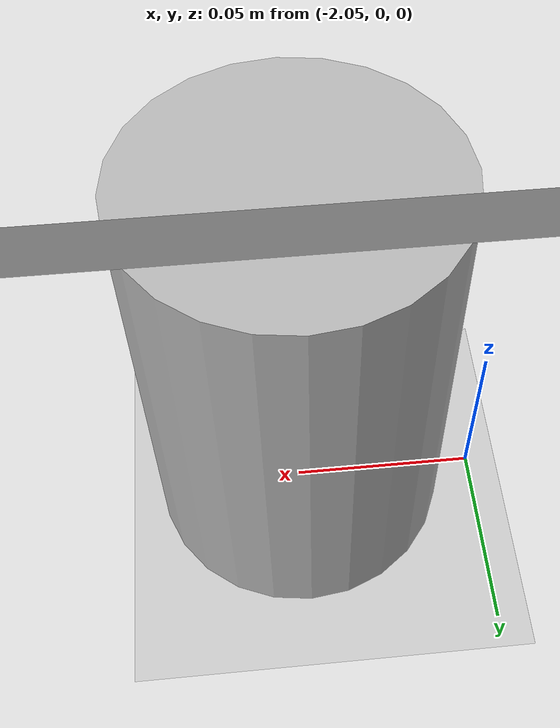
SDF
<?xml version="1.0" ?>
<sdf version="1.4">
  <!-- We use a custom world for the rrbot so that the camera angle is launched correctly -->

  <world name="default">
    <include>
      <uri>model://ground_plane</uri>
    </include>

    <!-- Global light source -->
    <include>
      <uri>model://sun</uri>
    </include>
    <include>
      <uri>model://coffee_box</uri>
      <pose>-2 0 0 0 0 0</pose>
    </include>
    <include>
      <uri>model://warehouse</uri>
      <pose>0.426724 4.060101 0.168675 0 0 0</pose>
    </include>
    <!-- Focus camera on tall pendulum -->

  </world>
</sdf>

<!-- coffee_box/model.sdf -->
<sdf version='1.6'>
  <model name='coffee_box'>
    <link name='link_0'>
         <visual name='visual'>
        <pose frame=''>0 0 0.06 0 -0 0</pose>
        <geometry>
          <cylinder>
            <radius>0.04</radius>
            <length>0.12</length>
          </cylinder>
        </geometry>
      <material>
          <script>
            <uri>model://coffee_box/materials/scripts</uri>
            <uri>model://coffee_box/materials/textures</uri>
            <name>coffee_pat</name>
          </script>
        </material>
        <cast_shadows>1</cast_shadows>
        <transparency>0</transparency>
      </visual>
      <collision name='collision'>
        <laser_retro>0</laser_retro>
        <max_contacts>10</max_contacts>
        <pose frame=''>0 0 0 0 -0 0</pose>
        <geometry>
          <cylinder>
            <radius>0.04</radius>
            <length>0.12</length>
          </cylinder>
        </geometry>
       </collision>
    </link>
    <static>1</static>
    <allow_auto_disable>1</allow_auto_disable>
  </model>
</sdf>

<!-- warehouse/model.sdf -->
<sdf version="1.5">
  <model name="warehouse">
    <static>true</static>

    <link name="link">
      <collision name="collision">
        <geometry>
          <mesh>
            <uri>model://warehouse/meshes/warehouse.dae</uri>
            <scale>1 1 1</scale>
          </mesh>
        </geometry>
      </collision>
      <visual name="visual">
        <geometry>
          <mesh>
            <uri>model://warehouse/meshes/warehouse.dae</uri>
            <scale>1 1 1</scale>
          </mesh>
        </geometry>
      </visual>
    </link>
  </model>
</sdf>
